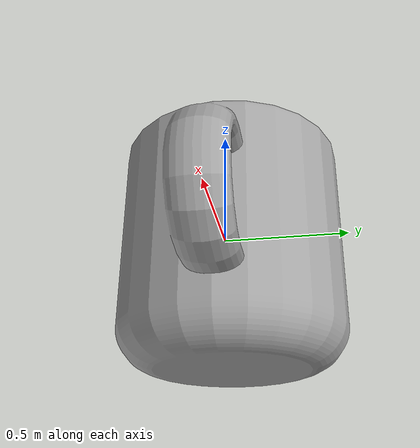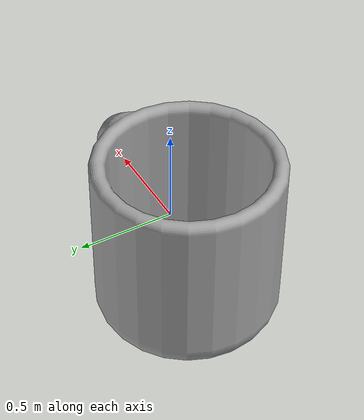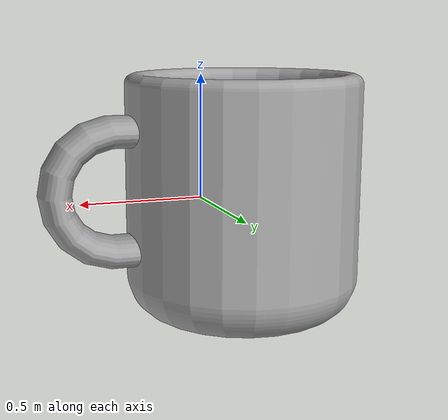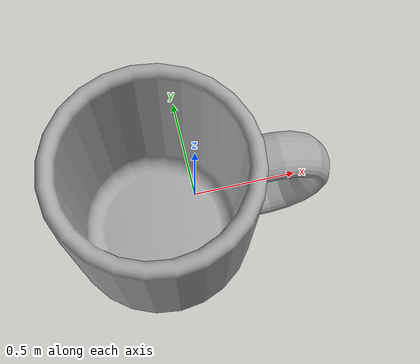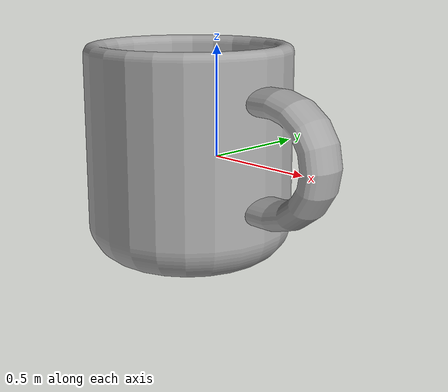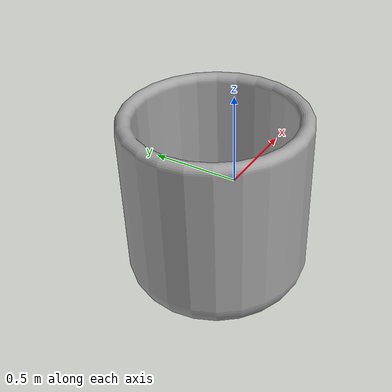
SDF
<?xml version="1.0" ?>
<sdf version="1.5">
  <model name='cup8'>
    <pose>0 0 0 0 0 0</pose>
    <static>1</static>
    <link name='body'>
      <collision name="cup8-coll">
        <pose>0 0 -0.5 0 0 0</pose>
        <geometry>
          <mesh>
            <uri>model://cup8/meshes/cup8.dae</uri>
          </mesh>
        </geometry>
      </collision>
      <visual name='cup8'>
        <cast_shadows>1</cast_shadows>
        <pose>0 0 -0.5 0 0 0</pose>
        <geometry>
          <mesh>
            <uri>model://cup8/meshes/cup8.dae</uri>
          </mesh>
        </geometry>
      </visual>
      <velocity_decay>
        <linear>0</linear>
        <angular>0</angular>
      </velocity_decay>
      <self_collide>0</self_collide>
      <kinematic>0</kinematic>
      <gravity>1</gravity>
    </link>
  </model>

</sdf>
